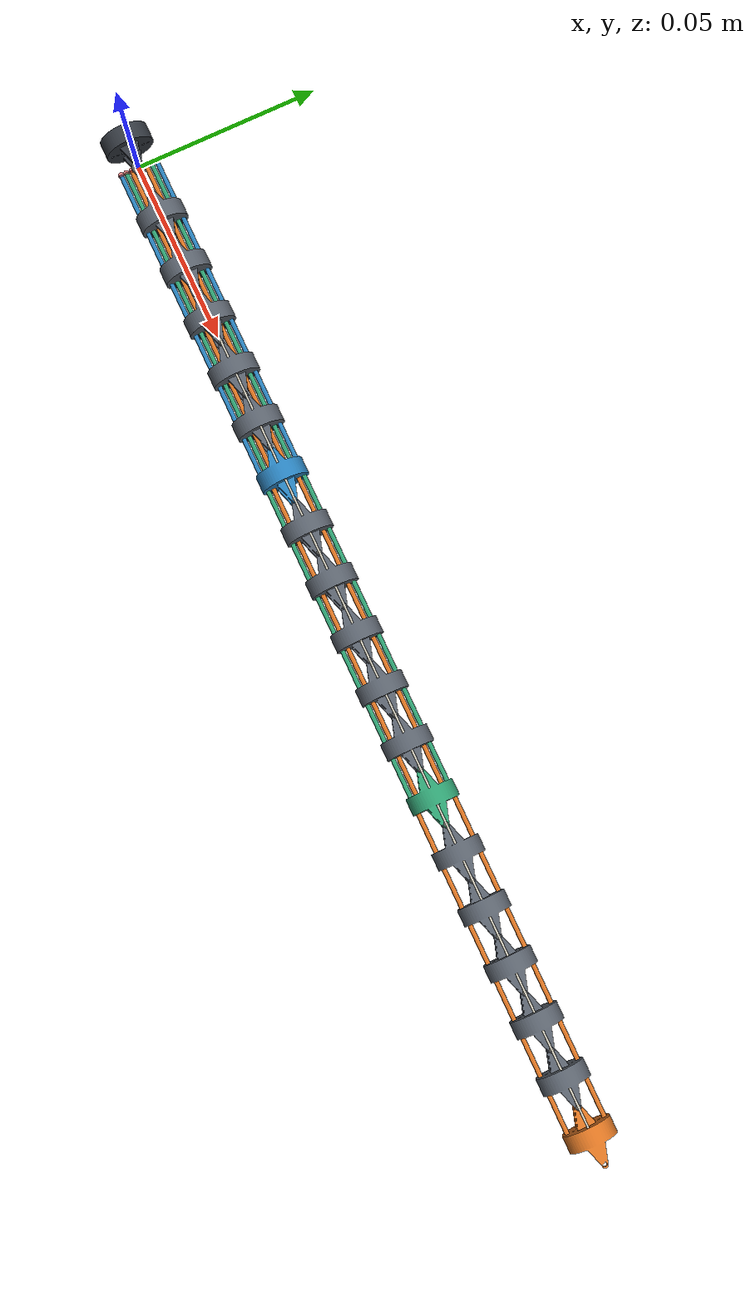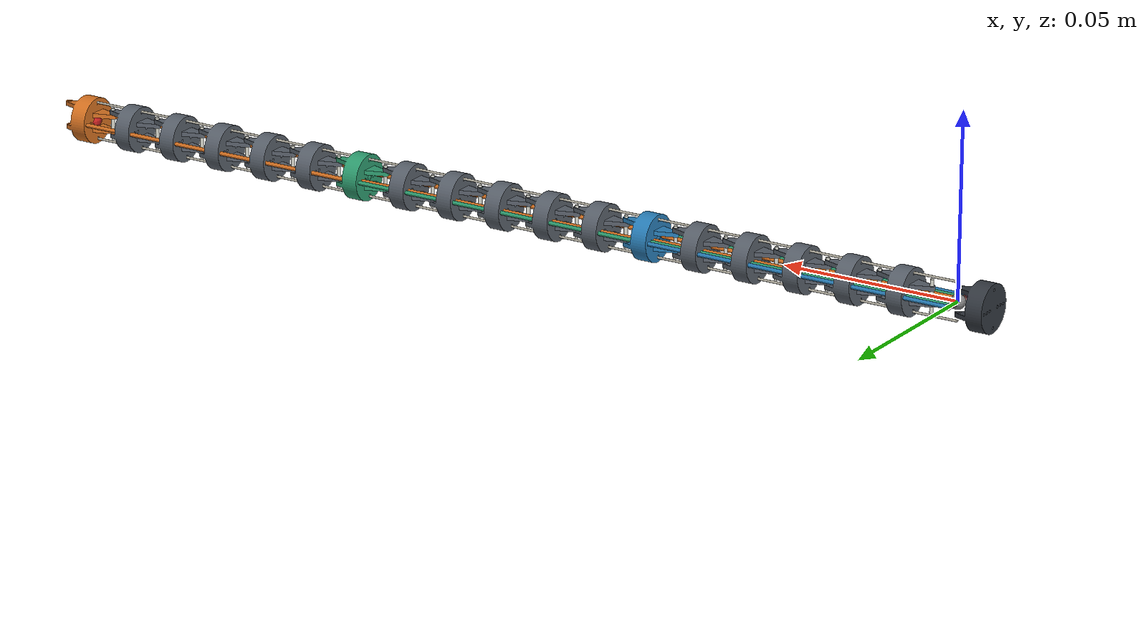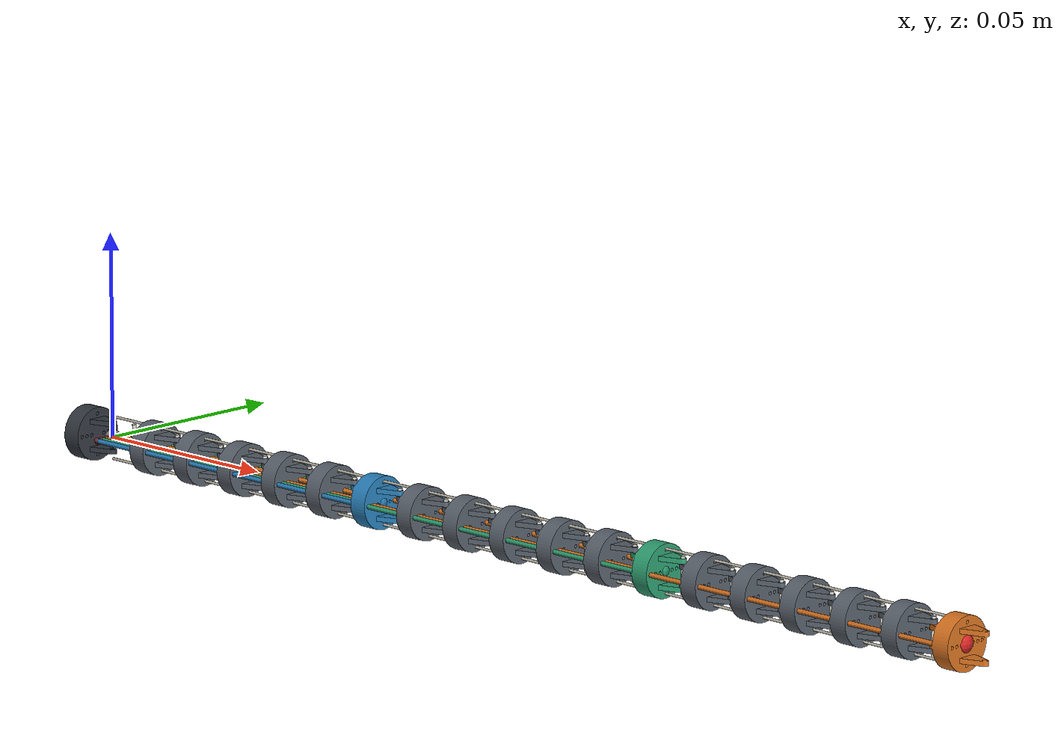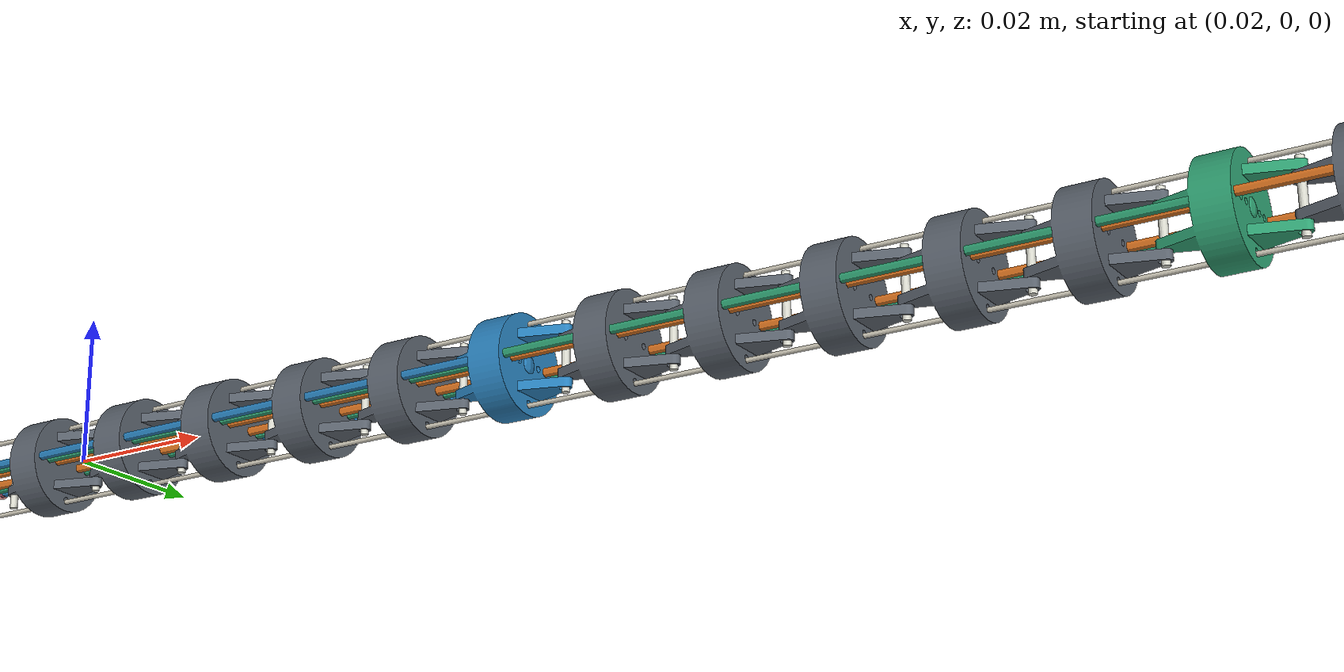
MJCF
<mujoco model="continuum_planar">
  <!-- GENERATED by continuum_sim/build_model.py - edit params.py, not this file. -->

  <compiler angle="radian" autolimits="true" meshdir="D:/Abroad/Meeting/Prof Cao/Robotics Control system/MuJoCo_Sim/assets"/>

  <option timestep="0.002" gravity="0 0 0" integrator="implicitfast">
    <flag energy="enable"/>
  </option>

  <default>
    <joint type="hinge" axis="0 0 1"
           stiffness="0.6" damping="0.02" armature="0.0001"/>
    <geom contype="0" conaffinity="0"/>
  </default>

  <visual>
    <headlight ambient="0.45 0.45 0.45" diffuse="0.6 0.6 0.6"/>
    <rgba haze="0.9 0.92 0.95 1"/>
    <global offwidth="1920" offheight="1080"/>
  </visual>

  <asset>
    <mesh name="base_disk_mesh" file="big_side_mujoco.stl"
          scale="0.001 0.001 0.001"/>
    <mesh name="spacer_disk_mesh" file="both_side_2_mujoco.stl"
          scale="0.001 0.001 0.001"/>
  </asset>

  <worldbody>
    <light pos="0.15 0 0.6" dir="0 0 -1" diffuse="0.7 0.7 0.7"/>

    <!-- Looks straight down -z onto the x-y bending plane. -->
    <camera name="planar" pos="0.1350 0 0.45" xyaxes="1 0 0 0 1 0"/>

    <!-- Base disk, welded to the world at the tendon-anchor plane. -->
    <body name="base" pos="0 0 0">
      <geom name="base_disk" type="mesh" mesh="base_disk_mesh"
            pos="0 0 0" rgba="0.20 0.22 0.25 1"
            mass="0.00045" contype="0" conaffinity="0"/>
      <site name="origin" pos="0 0 0" size="0.002" rgba="0.5 0.5 0.5 1"/>
      <site name="m1_s0" pos="0 0.005000 0" size="0.0008" rgba="0.8 0.2 0.2 0.6"/>
      <site name="m2_s0" pos="0 -0.005000 0" size="0.0008" rgba="0.8 0.2 0.2 0.6"/>
      <site name="m3_s0" pos="0 0.003500 0" size="0.0008" rgba="0.8 0.2 0.2 0.6"/>
      <site name="m4_s0" pos="0 -0.003500 0" size="0.0008" rgba="0.8 0.2 0.2 0.6"/>
      <site name="m5_s0" pos="0 0.002000 0" size="0.0008" rgba="0.8 0.2 0.2 0.6"/>
      <site name="m6_s0" pos="0 -0.002000 0" size="0.0008" rgba="0.8 0.2 0.2 0.6"/>
        <body name="link1" pos="0.007500 0 0">
          <joint name="j1" stiffness="0.6"/>
          <geom name="pin1" type="cylinder"
                fromto="0 0 -0.004500 0 0 0.004500"
                size="0.000500" rgba="0.82 0.82 0.78 1"
                density="1" contype="0" conaffinity="0"/>
          <geom name="backbone1_1" type="cylinder"
                fromto="-0.007500 0.000000 -0.005200 0.007500 0.000000 -0.005200"
                size="0.000300" rgba="0.78 0.76 0.70 1"
                density="6450" contype="0" conaffinity="0"/>
          <geom name="backbone1_2" type="cylinder"
                fromto="-0.007500 0.000000 0.005200 0.007500 0.000000 0.005200"
                size="0.000300" rgba="0.78 0.76 0.70 1"
                density="6450" contype="0" conaffinity="0"/>
          <geom name="disk1" type="mesh" mesh="spacer_disk_mesh"
                pos="0 0 0" rgba="0.35 0.38 0.42 1"
                mass="0.00045" contype="0" conaffinity="0"/>
          <site name="m1_s1" pos="0.007500 0.005000 0" size="0.0008" rgba="0.8 0.2 0.2 0.6"/>
          <site name="m2_s1" pos="0.007500 -0.005000 0" size="0.0008" rgba="0.8 0.2 0.2 0.6"/>
          <site name="m3_s1" pos="0.007500 0.003500 0" size="0.0008" rgba="0.8 0.2 0.2 0.6"/>
          <site name="m4_s1" pos="0.007500 -0.003500 0" size="0.0008" rgba="0.8 0.2 0.2 0.6"/>
          <site name="m5_s1" pos="0.007500 0.002000 0" size="0.0008" rgba="0.8 0.2 0.2 0.6"/>
          <site name="m6_s1" pos="0.007500 -0.002000 0" size="0.0008" rgba="0.8 0.2 0.2 0.6"/>
          <body name="link2" pos="0.015000 0 0">
            <joint name="j2" stiffness="0.6"/>
            <geom name="pin2" type="cylinder"
                  fromto="0 0 -0.004500 0 0 0.004500"
                  size="0.000500" rgba="0.82 0.82 0.78 1"
                  density="1" contype="0" conaffinity="0"/>
            <geom name="backbone2_1" type="cylinder"
                  fromto="-0.007500 0.000000 -0.005200 0.007500 0.000000 -0.005200"
                  size="0.000300" rgba="0.78 0.76 0.70 1"
                  density="6450" contype="0" conaffinity="0"/>
            <geom name="backbone2_2" type="cylinder"
                  fromto="-0.007500 0.000000 0.005200 0.007500 0.000000 0.005200"
                  size="0.000300" rgba="0.78 0.76 0.70 1"
                  density="6450" contype="0" conaffinity="0"/>
            <geom name="disk2" type="mesh" mesh="spacer_disk_mesh"
                  pos="0 0 0" rgba="0.35 0.38 0.42 1"
                  mass="0.00045" contype="0" conaffinity="0"/>
            <site name="m1_s2" pos="0.007500 0.005000 0" size="0.0008" rgba="0.8 0.2 0.2 0.6"/>
            <site name="m2_s2" pos="0.007500 -0.005000 0" size="0.0008" rgba="0.8 0.2 0.2 0.6"/>
            <site name="m3_s2" pos="0.007500 0.003500 0" size="0.0008" rgba="0.8 0.2 0.2 0.6"/>
            <site name="m4_s2" pos="0.007500 -0.003500 0" size="0.0008" rgba="0.8 0.2 0.2 0.6"/>
            <site name="m5_s2" pos="0.007500 0.002000 0" size="0.0008" rgba="0.8 0.2 0.2 0.6"/>
            <site name="m6_s2" pos="0.007500 -0.002000 0" size="0.0008" rgba="0.8 0.2 0.2 0.6"/>
            <body name="link3" pos="0.015000 0 0">
              <joint name="j3" stiffness="0.6"/>
              <geom name="pin3" type="cylinder"
                    fromto="0 0 -0.004500 0 0 0.004500"
                    size="0.000500" rgba="0.82 0.82 0.78 1"
                    density="1" contype="0" conaffinity="0"/>
              <geom name="backbone3_1" type="cylinder"
                    fromto="-0.007500 0.000000 -0.005200 0.007500 0.000000 -0.005200"
                    size="0.000300" rgba="0.78 0.76 0.70 1"
                    density="6450" contype="0" conaffinity="0"/>
              <geom name="backbone3_2" type="cylinder"
                    fromto="-0.007500 0.000000 0.005200 0.007500 0.000000 0.005200"
                    size="0.000300" rgba="0.78 0.76 0.70 1"
                    density="6450" contype="0" conaffinity="0"/>
              <geom name="disk3" type="mesh" mesh="spacer_disk_mesh"
                    pos="0 0 0" rgba="0.35 0.38 0.42 1"
                    mass="0.00045" contype="0" conaffinity="0"/>
              <site name="m1_s3" pos="0.007500 0.005000 0" size="0.0008" rgba="0.8 0.2 0.2 0.6"/>
              <site name="m2_s3" pos="0.007500 -0.005000 0" size="0.0008" rgba="0.8 0.2 0.2 0.6"/>
              <site name="m3_s3" pos="0.007500 0.003500 0" size="0.0008" rgba="0.8 0.2 0.2 0.6"/>
              <site name="m4_s3" pos="0.007500 -0.003500 0" size="0.0008" rgba="0.8 0.2 0.2 0.6"/>
              <site name="m5_s3" pos="0.007500 0.002000 0" size="0.0008" rgba="0.8 0.2 0.2 0.6"/>
              <site name="m6_s3" pos="0.007500 -0.002000 0" size="0.0008" rgba="0.8 0.2 0.2 0.6"/>
              <body name="link4" pos="0.015000 0 0">
                <joint name="j4" stiffness="0.6"/>
                <geom name="pin4" type="cylinder"
                      fromto="0 0 -0.004500 0 0 0.004500"
                      size="0.000500" rgba="0.82 0.82 0.78 1"
                      density="1" contype="0" conaffinity="0"/>
                <geom name="backbone4_1" type="cylinder"
                      fromto="-0.007500 0.000000 -0.005200 0.007500 0.000000 -0.005200"
                      size="0.000300" rgba="0.78 0.76 0.70 1"
                      density="6450" contype="0" conaffinity="0"/>
                <geom name="backbone4_2" type="cylinder"
                      fromto="-0.007500 0.000000 0.005200 0.007500 0.000000 0.005200"
                      size="0.000300" rgba="0.78 0.76 0.70 1"
                      density="6450" contype="0" conaffinity="0"/>
                <geom name="disk4" type="mesh" mesh="spacer_disk_mesh"
                      pos="0 0 0" rgba="0.35 0.38 0.42 1"
                      mass="0.00045" contype="0" conaffinity="0"/>
                <site name="m1_s4" pos="0.007500 0.005000 0" size="0.0008" rgba="0.8 0.2 0.2 0.6"/>
                <site name="m2_s4" pos="0.007500 -0.005000 0" size="0.0008" rgba="0.8 0.2 0.2 0.6"/>
                <site name="m3_s4" pos="0.007500 0.003500 0" size="0.0008" rgba="0.8 0.2 0.2 0.6"/>
                <site name="m4_s4" pos="0.007500 -0.003500 0" size="0.0008" rgba="0.8 0.2 0.2 0.6"/>
                <site name="m5_s4" pos="0.007500 0.002000 0" size="0.0008" rgba="0.8 0.2 0.2 0.6"/>
                <site name="m6_s4" pos="0.007500 -0.002000 0" size="0.0008" rgba="0.8 0.2 0.2 0.6"/>
                <body name="link5" pos="0.015000 0 0">
                  <joint name="j5" stiffness="0.6"/>
                  <geom name="pin5" type="cylinder"
                        fromto="0 0 -0.004500 0 0 0.004500"
                        size="0.000500" rgba="0.82 0.82 0.78 1"
                        density="1" contype="0" conaffinity="0"/>
                  <geom name="backbone5_1" type="cylinder"
                        fromto="-0.007500 0.000000 -0.005200 0.007500 0.000000 -0.005200"
                        size="0.000300" rgba="0.78 0.76 0.70 1"
                        density="6450" contype="0" conaffinity="0"/>
                  <geom name="backbone5_2" type="cylinder"
                        fromto="-0.007500 0.000000 0.005200 0.007500 0.000000 0.005200"
                        size="0.000300" rgba="0.78 0.76 0.70 1"
                        density="6450" contype="0" conaffinity="0"/>
                  <geom name="disk5" type="mesh" mesh="spacer_disk_mesh"
                        pos="0 0 0" rgba="0.35 0.38 0.42 1"
                        mass="0.00045" contype="0" conaffinity="0"/>
                  <site name="m1_s5" pos="0.007500 0.005000 0" size="0.0008" rgba="0.8 0.2 0.2 0.6"/>
                  <site name="m2_s5" pos="0.007500 -0.005000 0" size="0.0008" rgba="0.8 0.2 0.2 0.6"/>
                  <site name="m3_s5" pos="0.007500 0.003500 0" size="0.0008" rgba="0.8 0.2 0.2 0.6"/>
                  <site name="m4_s5" pos="0.007500 -0.003500 0" size="0.0008" rgba="0.8 0.2 0.2 0.6"/>
                  <site name="m5_s5" pos="0.007500 0.002000 0" size="0.0008" rgba="0.8 0.2 0.2 0.6"/>
                  <site name="m6_s5" pos="0.007500 -0.002000 0" size="0.0008" rgba="0.8 0.2 0.2 0.6"/>
                  <body name="link6" pos="0.015000 0 0">
                    <joint name="j6" stiffness="0.6"/>
                    <geom name="pin6" type="cylinder"
                          fromto="0 0 -0.004500 0 0 0.004500"
                          size="0.000500" rgba="0.82 0.82 0.78 1"
                          density="1" contype="0" conaffinity="0"/>
                    <geom name="backbone6_1" type="cylinder"
                          fromto="-0.007500 0.000000 -0.005200 0.007500 0.000000 -0.005200"
                          size="0.000300" rgba="0.78 0.76 0.70 1"
                          density="6450" contype="0" conaffinity="0"/>
                    <geom name="backbone6_2" type="cylinder"
                          fromto="-0.007500 0.000000 0.005200 0.007500 0.000000 0.005200"
                          size="0.000300" rgba="0.78 0.76 0.70 1"
                          density="6450" contype="0" conaffinity="0"/>
                    <geom name="disk6" type="mesh" mesh="spacer_disk_mesh"
                          pos="0 0 0" rgba="0.16 0.50 0.73 1"
                          mass="0.00045" contype="0" conaffinity="0"/>
                    <site name="seg1_end" pos="0.007500 0 0" size="0.0025" rgba="0.16 0.50 0.73 1"/>
                    <site name="m1_s6" pos="0.007500 0.005000 0" size="0.0008" rgba="0.8 0.2 0.2 0.6"/>
                    <site name="m2_s6" pos="0.007500 -0.005000 0" size="0.0008" rgba="0.8 0.2 0.2 0.6"/>
                    <site name="m3_s6" pos="0.007500 0.003500 0" size="0.0008" rgba="0.8 0.2 0.2 0.6"/>
                    <site name="m3_s6x" pos="0.007500 0.005000 0" size="0.0008" rgba="0.8 0.2 0.2 0.6"/>
                    <site name="m4_s6" pos="0.007500 -0.003500 0" size="0.0008" rgba="0.8 0.2 0.2 0.6"/>
                    <site name="m4_s6x" pos="0.007500 -0.005000 0" size="0.0008" rgba="0.8 0.2 0.2 0.6"/>
                    <site name="m5_s6" pos="0.007500 0.002000 0" size="0.0008" rgba="0.8 0.2 0.2 0.6"/>
                    <site name="m5_s6x" pos="0.007500 0.003500 0" size="0.0008" rgba="0.8 0.2 0.2 0.6"/>
                    <site name="m6_s6" pos="0.007500 -0.002000 0" size="0.0008" rgba="0.8 0.2 0.2 0.6"/>
                    <site name="m6_s6x" pos="0.007500 -0.003500 0" size="0.0008" rgba="0.8 0.2 0.2 0.6"/>
                    <body name="link7" pos="0.015000 0 0">
                      <joint name="j7" stiffness="0.6"/>
                      <geom name="pin7" type="cylinder"
                            fromto="0 0 -0.004500 0 0 0.004500"
                            size="0.000500" rgba="0.82 0.82 0.78 1"
                            density="1" contype="0" conaffinity="0"/>
                      <geom name="backbone7_1" type="cylinder"
                            fromto="-0.007500 0.000000 -0.005200 0.007500 0.000000 -0.005200"
                            size="0.000300" rgba="0.78 0.76 0.70 1"
                            density="6450" contype="0" conaffinity="0"/>
                      <geom name="backbone7_2" type="cylinder"
                            fromto="-0.007500 0.000000 0.005200 0.007500 0.000000 0.005200"
                            size="0.000300" rgba="0.78 0.76 0.70 1"
                            density="6450" contype="0" conaffinity="0"/>
                      <geom name="disk7" type="mesh" mesh="spacer_disk_mesh"
                            pos="0 0 0" rgba="0.35 0.38 0.42 1"
                            mass="0.00045" contype="0" conaffinity="0"/>
                      <site name="m3_s7" pos="0.007500 0.005000 0" size="0.0008" rgba="0.8 0.2 0.2 0.6"/>
                      <site name="m4_s7" pos="0.007500 -0.005000 0" size="0.0008" rgba="0.8 0.2 0.2 0.6"/>
                      <site name="m5_s7" pos="0.007500 0.003500 0" size="0.0008" rgba="0.8 0.2 0.2 0.6"/>
                      <site name="m6_s7" pos="0.007500 -0.003500 0" size="0.0008" rgba="0.8 0.2 0.2 0.6"/>
                      <body name="link8" pos="0.015000 0 0">
                        <joint name="j8" stiffness="0.6"/>
                        <geom name="pin8" type="cylinder"
                              fromto="0 0 -0.004500 0 0 0.004500"
                              size="0.000500" rgba="0.82 0.82 0.78 1"
                              density="1" contype="0" conaffinity="0"/>
                        <geom name="backbone8_1" type="cylinder"
                              fromto="-0.007500 0.000000 -0.005200 0.007500 0.000000 -0.005200"
                              size="0.000300" rgba="0.78 0.76 0.70 1"
                              density="6450" contype="0" conaffinity="0"/>
                        <geom name="backbone8_2" type="cylinder"
                              fromto="-0.007500 0.000000 0.005200 0.007500 0.000000 0.005200"
                              size="0.000300" rgba="0.78 0.76 0.70 1"
                              density="6450" contype="0" conaffinity="0"/>
                        <geom name="disk8" type="mesh" mesh="spacer_disk_mesh"
                              pos="0 0 0" rgba="0.35 0.38 0.42 1"
                              mass="0.00045" contype="0" conaffinity="0"/>
                        <site name="m3_s8" pos="0.007500 0.005000 0" size="0.0008" rgba="0.8 0.2 0.2 0.6"/>
                        <site name="m4_s8" pos="0.007500 -0.005000 0" size="0.0008" rgba="0.8 0.2 0.2 0.6"/>
                        <site name="m5_s8" pos="0.007500 0.003500 0" size="0.0008" rgba="0.8 0.2 0.2 0.6"/>
                        <site name="m6_s8" pos="0.007500 -0.003500 0" size="0.0008" rgba="0.8 0.2 0.2 0.6"/>
                        <body name="link9" pos="0.015000 0 0">
                          <joint name="j9" stiffness="0.6"/>
                          <geom name="pin9" type="cylinder"
                                fromto="0 0 -0.004500 0 0 0.004500"
                                size="0.000500" rgba="0.82 0.82 0.78 1"
                                density="1" contype="0" conaffinity="0"/>
                          <geom name="backbone9_1" type="cylinder"
                                fromto="-0.007500 0.000000 -0.005200 0.007500 0.000000 -0.005200"
                                size="0.000300" rgba="0.78 0.76 0.70 1"
                                density="6450" contype="0" conaffinity="0"/>
                          <geom name="backbone9_2" type="cylinder"
                                fromto="-0.007500 0.000000 0.005200 0.007500 0.000000 0.005200"
                                size="0.000300" rgba="0.78 0.76 0.70 1"
                                density="6450" contype="0" conaffinity="0"/>
                          <geom name="disk9" type="mesh" mesh="spacer_disk_mesh"
                                pos="0 0 0" rgba="0.35 0.38 0.42 1"
                                mass="0.00045" contype="0" conaffinity="0"/>
                          <site name="m3_s9" pos="0.007500 0.005000 0" size="0.0008" rgba="0.8 0.2 0.2 0.6"/>
                          <site name="m4_s9" pos="0.007500 -0.005000 0" size="0.0008" rgba="0.8 0.2 0.2 0.6"/>
                          <site name="m5_s9" pos="0.007500 0.003500 0" size="0.0008" rgba="0.8 0.2 0.2 0.6"/>
                          <site name="m6_s9" pos="0.007500 -0.003500 0" size="0.0008" rgba="0.8 0.2 0.2 0.6"/>
                          <body name="link10" pos="0.015000 0 0">
                            <joint name="j10" stiffness="0.6"/>
                            <geom name="pin10" type="cylinder"
                                  fromto="0 0 -0.004500 0 0 0.004500"
                                  size="0.000500" rgba="0.82 0.82 0.78 1"
                                  density="1" contype="0" conaffinity="0"/>
                            <geom name="backbone10_1" type="cylinder"
                                  fromto="-0.007500 0.000000 -0.005200 0.007500 0.000000 -0.005200"
                                  size="0.000300" rgba="0.78 0.76 0.70 1"
                                  density="6450" contype="0" conaffinity="0"/>
                            <geom name="backbone10_2" type="cylinder"
                                  fromto="-0.007500 0.000000 0.005200 0.007500 0.000000 0.005200"
                                  size="0.000300" rgba="0.78 0.76 0.70 1"
                                  density="6450" contype="0" conaffinity="0"/>
                            <geom name="disk10" type="mesh" mesh="spacer_disk_mesh"
                                  pos="0 0 0" rgba="0.35 0.38 0.42 1"
                                  mass="0.00045" contype="0" conaffinity="0"/>
                            <site name="m3_s10" pos="0.007500 0.005000 0" size="0.0008" rgba="0.8 0.2 0.2 0.6"/>
                            <site name="m4_s10" pos="0.007500 -0.005000 0" size="0.0008" rgba="0.8 0.2 0.2 0.6"/>
                            <site name="m5_s10" pos="0.007500 0.003500 0" size="0.0008" rgba="0.8 0.2 0.2 0.6"/>
                            <site name="m6_s10" pos="0.007500 -0.003500 0" size="0.0008" rgba="0.8 0.2 0.2 0.6"/>
                            <body name="link11" pos="0.015000 0 0">
                              <joint name="j11" stiffness="0.6"/>
                              <geom name="pin11" type="cylinder"
                                    fromto="0 0 -0.004500 0 0 0.004500"
                                    size="0.000500" rgba="0.82 0.82 0.78 1"
                                    density="1" contype="0" conaffinity="0"/>
                              <geom name="backbone11_1" type="cylinder"
                                    fromto="-0.007500 0.000000 -0.005200 0.007500 0.000000 -0.005200"
                                    size="0.000300" rgba="0.78 0.76 0.70 1"
                                    density="6450" contype="0" conaffinity="0"/>
                              <geom name="backbone11_2" type="cylinder"
                                    fromto="-0.007500 0.000000 0.005200 0.007500 0.000000 0.005200"
                                    size="0.000300" rgba="0.78 0.76 0.70 1"
                                    density="6450" contype="0" conaffinity="0"/>
                              <geom name="disk11" type="mesh" mesh="spacer_disk_mesh"
                                    pos="0 0 0" rgba="0.35 0.38 0.42 1"
                                    mass="0.00045" contype="0" conaffinity="0"/>
                              <site name="m3_s11" pos="0.007500 0.005000 0" size="0.0008" rgba="0.8 0.2 0.2 0.6"/>
                              <site name="m4_s11" pos="0.007500 -0.005000 0" size="0.0008" rgba="0.8 0.2 0.2 0.6"/>
                              <site name="m5_s11" pos="0.007500 0.003500 0" size="0.0008" rgba="0.8 0.2 0.2 0.6"/>
                              <site name="m6_s11" pos="0.007500 -0.003500 0" size="0.0008" rgba="0.8 0.2 0.2 0.6"/>
                              <body name="link12" pos="0.015000 0 0">
                                <joint name="j12" stiffness="0.6"/>
                                <geom name="pin12" type="cylinder"
                                      fromto="0 0 -0.004500 0 0 0.004500"
                                      size="0.000500" rgba="0.82 0.82 0.78 1"
                                      density="1" contype="0" conaffinity="0"/>
                                <geom name="backbone12_1" type="cylinder"
                                      fromto="-0.007500 0.000000 -0.005200 0.007500 0.000000 -0.005200"
                                      size="0.000300" rgba="0.78 0.76 0.70 1"
                                      density="6450" contype="0" conaffinity="0"/>
                                <geom name="backbone12_2" type="cylinder"
                                      fromto="-0.007500 0.000000 0.005200 0.007500 0.000000 0.005200"
                                      size="0.000300" rgba="0.78 0.76 0.70 1"
                                      density="6450" contype="0" conaffinity="0"/>
                                <geom name="disk12" type="mesh" mesh="spacer_disk_mesh"
                                      pos="0 0 0" rgba="0.18 0.62 0.44 1"
                                      mass="0.00045" contype="0" conaffinity="0"/>
                                <site name="seg2_end" pos="0.007500 0 0" size="0.0025" rgba="0.18 0.62 0.44 1"/>
                                <site name="m3_s12" pos="0.007500 0.005000 0" size="0.0008" rgba="0.8 0.2 0.2 0.6"/>
                                <site name="m4_s12" pos="0.007500 -0.005000 0" size="0.0008" rgba="0.8 0.2 0.2 0.6"/>
                                <site name="m5_s12" pos="0.007500 0.003500 0" size="0.0008" rgba="0.8 0.2 0.2 0.6"/>
                                <site name="m5_s12x" pos="0.007500 0.005000 0" size="0.0008" rgba="0.8 0.2 0.2 0.6"/>
                                <site name="m6_s12" pos="0.007500 -0.003500 0" size="0.0008" rgba="0.8 0.2 0.2 0.6"/>
                                <site name="m6_s12x" pos="0.007500 -0.005000 0" size="0.0008" rgba="0.8 0.2 0.2 0.6"/>
                                <body name="link13" pos="0.015000 0 0">
                                  <joint name="j13" stiffness="0.6"/>
                                  <geom name="pin13" type="cylinder"
                                        fromto="0 0 -0.004500 0 0 0.004500"
                                        size="0.000500" rgba="0.82 0.82 0.78 1"
                                        density="1" contype="0" conaffinity="0"/>
                                  <geom name="backbone13_1" type="cylinder"
                                        fromto="-0.007500 0.000000 -0.005200 0.007500 0.000000 -0.005200"
                                        size="0.000300" rgba="0.78 0.76 0.70 1"
                                        density="6450" contype="0" conaffinity="0"/>
                                  <geom name="backbone13_2" type="cylinder"
                                        fromto="-0.007500 0.000000 0.005200 0.007500 0.000000 0.005200"
                                        size="0.000300" rgba="0.78 0.76 0.70 1"
                                        density="6450" contype="0" conaffinity="0"/>
                                  <geom name="disk13" type="mesh" mesh="spacer_disk_mesh"
                                        pos="0 0 0" rgba="0.35 0.38 0.42 1"
                                        mass="0.00045" contype="0" conaffinity="0"/>
                                  <site name="m5_s13" pos="0.007500 0.005000 0" size="0.0008" rgba="0.8 0.2 0.2 0.6"/>
                                  <site name="m6_s13" pos="0.007500 -0.005000 0" size="0.0008" rgba="0.8 0.2 0.2 0.6"/>
                                  <body name="link14" pos="0.015000 0 0">
                                    <joint name="j14" stiffness="0.6"/>
                                    <geom name="pin14" type="cylinder"
                                          fromto="0 0 -0.004500 0 0 0.004500"
                                          size="0.000500" rgba="0.82 0.82 0.78 1"
                                          density="1" contype="0" conaffinity="0"/>
                                    <geom name="backbone14_1" type="cylinder"
                                          fromto="-0.007500 0.000000 -0.005200 0.007500 0.000000 -0.005200"
                                          size="0.000300" rgba="0.78 0.76 0.70 1"
                                          density="6450" contype="0" conaffinity="0"/>
                                    <geom name="backbone14_2" type="cylinder"
                                          fromto="-0.007500 0.000000 0.005200 0.007500 0.000000 0.005200"
                                          size="0.000300" rgba="0.78 0.76 0.70 1"
                                          density="6450" contype="0" conaffinity="0"/>
                                    <geom name="disk14" type="mesh" mesh="spacer_disk_mesh"
                                          pos="0 0 0" rgba="0.35 0.38 0.42 1"
                                          mass="0.00045" contype="0" conaffinity="0"/>
                                    <site name="m5_s14" pos="0.007500 0.005000 0" size="0.0008" rgba="0.8 0.2 0.2 0.6"/>
                                    <site name="m6_s14" pos="0.007500 -0.005000 0" size="0.0008" rgba="0.8 0.2 0.2 0.6"/>
                                    <body name="link15" pos="0.015000 0 0">
                                      <joint name="j15" stiffness="0.6"/>
                                      <geom name="pin15" type="cylinder"
                                            fromto="0 0 -0.004500 0 0 0.004500"
                                            size="0.000500" rgba="0.82 0.82 0.78 1"
                                            density="1" contype="0" conaffinity="0"/>
                                      <geom name="backbone15_1" type="cylinder"
                                            fromto="-0.007500 0.000000 -0.005200 0.007500 0.000000 -0.005200"
                                            size="0.000300" rgba="0.78 0.76 0.70 1"
                                            density="6450" contype="0" conaffinity="0"/>
                                      <geom name="backbone15_2" type="cylinder"
                                            fromto="-0.007500 0.000000 0.005200 0.007500 0.000000 0.005200"
                                            size="0.000300" rgba="0.78 0.76 0.70 1"
                                            density="6450" contype="0" conaffinity="0"/>
                                      <geom name="disk15" type="mesh" mesh="spacer_disk_mesh"
                                            pos="0 0 0" rgba="0.35 0.38 0.42 1"
                                            mass="0.00045" contype="0" conaffinity="0"/>
                                      <site name="m5_s15" pos="0.007500 0.005000 0" size="0.0008" rgba="0.8 0.2 0.2 0.6"/>
                                      <site name="m6_s15" pos="0.007500 -0.005000 0" size="0.0008" rgba="0.8 0.2 0.2 0.6"/>
                                      <body name="link16" pos="0.015000 0 0">
                                        <joint name="j16" stiffness="0.6"/>
                                        <geom name="pin16" type="cylinder"
                                              fromto="0 0 -0.004500 0 0 0.004500"
                                              size="0.000500" rgba="0.82 0.82 0.78 1"
                                              density="1" contype="0" conaffinity="0"/>
                                        <geom name="backbone16_1" type="cylinder"
                                              fromto="-0.007500 0.000000 -0.005200 0.007500 0.000000 -0.005200"
                                              size="0.000300" rgba="0.78 0.76 0.70 1"
                                              density="6450" contype="0" conaffinity="0"/>
                                        <geom name="backbone16_2" type="cylinder"
                                              fromto="-0.007500 0.000000 0.005200 0.007500 0.000000 0.005200"
                                              size="0.000300" rgba="0.78 0.76 0.70 1"
                                              density="6450" contype="0" conaffinity="0"/>
                                        <geom name="disk16" type="mesh" mesh="spacer_disk_mesh"
                                              pos="0 0 0" rgba="0.35 0.38 0.42 1"
                                              mass="0.00045" contype="0" conaffinity="0"/>
                                        <site name="m5_s16" pos="0.007500 0.005000 0" size="0.0008" rgba="0.8 0.2 0.2 0.6"/>
                                        <site name="m6_s16" pos="0.007500 -0.005000 0" size="0.0008" rgba="0.8 0.2 0.2 0.6"/>
                                        <body name="link17" pos="0.015000 0 0">
                                          <joint name="j17" stiffness="0.6"/>
                                          <geom name="pin17" type="cylinder"
                                                fromto="0 0 -0.004500 0 0 0.004500"
                                                size="0.000500" rgba="0.82 0.82 0.78 1"
                                                density="1" contype="0" conaffinity="0"/>
                                          <geom name="backbone17_1" type="cylinder"
                                                fromto="-0.007500 0.000000 -0.005200 0.007500 0.000000 -0.005200"
                                                size="0.000300" rgba="0.78 0.76 0.70 1"
                                                density="6450" contype="0" conaffinity="0"/>
                                          <geom name="backbone17_2" type="cylinder"
                                                fromto="-0.007500 0.000000 0.005200 0.007500 0.000000 0.005200"
                                                size="0.000300" rgba="0.78 0.76 0.70 1"
                                                density="6450" contype="0" conaffinity="0"/>
                                          <geom name="disk17" type="mesh" mesh="spacer_disk_mesh"
                                                pos="0 0 0" rgba="0.35 0.38 0.42 1"
                                                mass="0.00045" contype="0" conaffinity="0"/>
                                          <site name="m5_s17" pos="0.007500 0.005000 0" size="0.0008" rgba="0.8 0.2 0.2 0.6"/>
                                          <site name="m6_s17" pos="0.007500 -0.005000 0" size="0.0008" rgba="0.8 0.2 0.2 0.6"/>
                                          <body name="link18" pos="0.015000 0 0">
                                            <joint name="j18" stiffness="0.6"/>
                                            <geom name="pin18" type="cylinder"
                                                  fromto="0 0 -0.004500 0 0 0.004500"
                                                  size="0.000500" rgba="0.82 0.82 0.78 1"
                                                  density="1" contype="0" conaffinity="0"/>
                                            <geom name="backbone18_1" type="cylinder"
                                                  fromto="-0.007500 0.000000 -0.005200 0.007500 0.000000 -0.005200"
                                                  size="0.000300" rgba="0.78 0.76 0.70 1"
                                                  density="6450" contype="0" conaffinity="0"/>
                                            <geom name="backbone18_2" type="cylinder"
                                                  fromto="-0.007500 0.000000 0.005200 0.007500 0.000000 0.005200"
                                                  size="0.000300" rgba="0.78 0.76 0.70 1"
                                                  density="6450" contype="0" conaffinity="0"/>
                                            <geom name="disk18" type="mesh" mesh="spacer_disk_mesh"
                                                  pos="0 0 0" rgba="0.85 0.45 0.13 1"
                                                  mass="0.00045" contype="0" conaffinity="0"/>
                                            <site name="seg3_end" pos="0.007500 0 0" size="0.0025" rgba="0.85 0.45 0.13 1"/>
                                            <site name="m5_s18" pos="0.007500 0.005000 0" size="0.0008" rgba="0.8 0.2 0.2 0.6"/>
                                            <site name="m6_s18" pos="0.007500 -0.005000 0" size="0.0008" rgba="0.8 0.2 0.2 0.6"/>
                                            <site name="tip" pos="0.007500 0 0" size="0.003" rgba="0.85 0.15 0.15 1"/>
                                          </body>
                                        </body>
                                      </body>
                                    </body>
                                  </body>
                                </body>
                              </body>
                            </body>
                          </body>
                        </body>
                      </body>
                    </body>
                  </body>
                </body>
              </body>
            </body>
          </body>
        </body>
    </body>
  </worldbody>

  <tendon>
    <spatial name="m1" width="0.000600" rgba="0.16 0.50 0.73 1">
      <site site="m1_s0"/>
      <site site="m1_s1"/>
      <site site="m1_s2"/>
      <site site="m1_s3"/>
      <site site="m1_s4"/>
      <site site="m1_s5"/>
      <site site="m1_s6"/>
    </spatial>
    <spatial name="m2" width="0.000600" rgba="0.16 0.50 0.73 1">
      <site site="m2_s0"/>
      <site site="m2_s1"/>
      <site site="m2_s2"/>
      <site site="m2_s3"/>
      <site site="m2_s4"/>
      <site site="m2_s5"/>
      <site site="m2_s6"/>
    </spatial>
    <spatial name="m3" width="0.000600" rgba="0.18 0.62 0.44 1">
      <site site="m3_s0"/>
      <site site="m3_s1"/>
      <site site="m3_s2"/>
      <site site="m3_s3"/>
      <site site="m3_s4"/>
      <site site="m3_s5"/>
      <site site="m3_s6"/>
      <site site="m3_s6x"/>
      <site site="m3_s7"/>
      <site site="m3_s8"/>
      <site site="m3_s9"/>
      <site site="m3_s10"/>
      <site site="m3_s11"/>
      <site site="m3_s12"/>
    </spatial>
    <spatial name="m4" width="0.000600" rgba="0.18 0.62 0.44 1">
      <site site="m4_s0"/>
      <site site="m4_s1"/>
      <site site="m4_s2"/>
      <site site="m4_s3"/>
      <site site="m4_s4"/>
      <site site="m4_s5"/>
      <site site="m4_s6"/>
      <site site="m4_s6x"/>
      <site site="m4_s7"/>
      <site site="m4_s8"/>
      <site site="m4_s9"/>
      <site site="m4_s10"/>
      <site site="m4_s11"/>
      <site site="m4_s12"/>
    </spatial>
    <spatial name="m5" width="0.000600" rgba="0.85 0.45 0.13 1">
      <site site="m5_s0"/>
      <site site="m5_s1"/>
      <site site="m5_s2"/>
      <site site="m5_s3"/>
      <site site="m5_s4"/>
      <site site="m5_s5"/>
      <site site="m5_s6"/>
      <site site="m5_s6x"/>
      <site site="m5_s7"/>
      <site site="m5_s8"/>
      <site site="m5_s9"/>
      <site site="m5_s10"/>
      <site site="m5_s11"/>
      <site site="m5_s12"/>
      <site site="m5_s12x"/>
      <site site="m5_s13"/>
      <site site="m5_s14"/>
      <site site="m5_s15"/>
      <site site="m5_s16"/>
      <site site="m5_s17"/>
      <site site="m5_s18"/>
    </spatial>
    <spatial name="m6" width="0.000600" rgba="0.85 0.45 0.13 1">
      <site site="m6_s0"/>
      <site site="m6_s1"/>
      <site site="m6_s2"/>
      <site site="m6_s3"/>
      <site site="m6_s4"/>
      <site site="m6_s5"/>
      <site site="m6_s6"/>
      <site site="m6_s6x"/>
      <site site="m6_s7"/>
      <site site="m6_s8"/>
      <site site="m6_s9"/>
      <site site="m6_s10"/>
      <site site="m6_s11"/>
      <site site="m6_s12"/>
      <site site="m6_s12x"/>
      <site site="m6_s13"/>
      <site site="m6_s14"/>
      <site site="m6_s15"/>
      <site site="m6_s16"/>
      <site site="m6_s17"/>
      <site site="m6_s18"/>
    </spatial>
  </tendon>

  <actuator>
    <position name="m1" tendon="m1" kp="250000" ctrlrange="0.070000 0.110000" forcerange="-80 0"/>
    <position name="m2" tendon="m2" kp="250000" ctrlrange="0.070000 0.110000" forcerange="-80 0"/>
    <position name="m3" tendon="m3" kp="250000" ctrlrange="0.160000 0.200000" forcerange="-80 0"/>
    <position name="m4" tendon="m4" kp="250000" ctrlrange="0.160000 0.200000" forcerange="-80 0"/>
    <position name="m5" tendon="m5" kp="250000" ctrlrange="0.250000 0.290000" forcerange="-80 0"/>
    <position name="m6" tendon="m6" kp="250000" ctrlrange="0.250000 0.290000" forcerange="-80 0"/>
  </actuator>
</mujoco>
